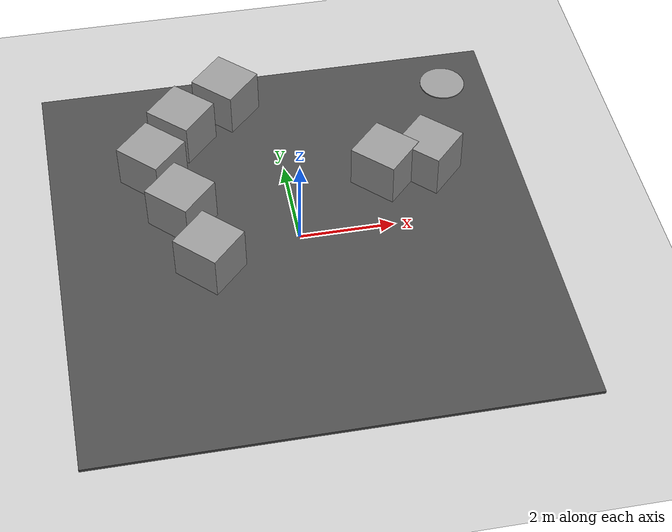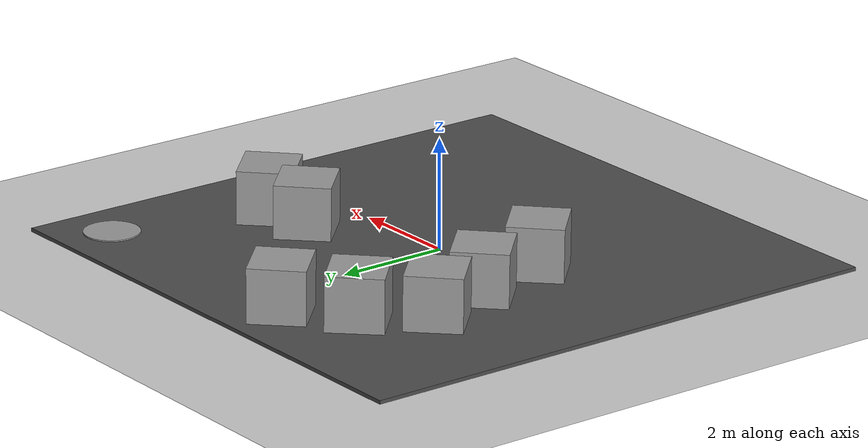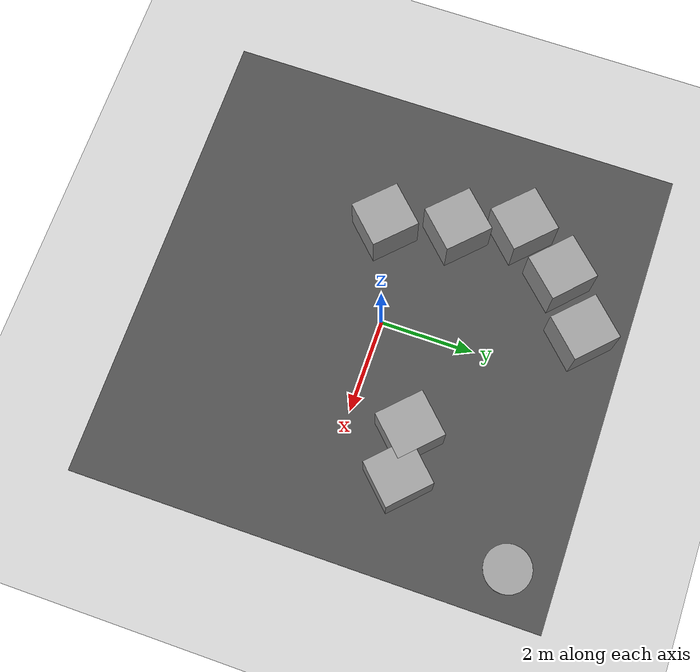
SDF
<sdf version="1.7">
 <world name="default">
  <model name="ground_plane">
   <static>1</static>
   <link name="link">
    <collision name="collision">
     <geometry><plane><normal>0 0 1</normal><size>100 100</size></plane></geometry>
     <surface><friction><ode><mu>100</mu><mu2>50</mu2></ode></friction></surface>
    </collision>
    <visual name="visual">
     <cast_shadows>0</cast_shadows>
     <geometry><plane><normal>0 0 1</normal><size>100 100</size></plane></geometry>
     <material>
      <script><uri>file://media/materials/scripts/gazebo.material</uri><name>Gazebo/Grey</name></script>
     </material>
    </visual>
    <velocity_decay><linear>0</linear><angular>0</angular></velocity_decay>
   </link>
  </model>
  <model name="asphalt_plane">
   <static>1</static>
   <link name="link">
    <collision name="collision"><geometry><box><size>10.0033 9.97431 0.1</size></box></geometry></collision>
    <visual name="visual">
     <cast_shadows>0</cast_shadows>
     <geometry><box><size>10.0033 9.97431 0.1</size></box></geometry>
     <material>
      <script>
       <uri>model://asphalt_plane/materials/scripts</uri>
       <uri>model://asphalt_plane/materials/textures</uri>
       <name>vrc/asphalt</name>
      </script>
     </material>
    </visual>
    <velocity_decay><linear>0</linear><angular>0</angular></velocity_decay>
   </link>
  </model>
  <model name="target">
   <link name="link">
    <inertial>
     <mass>1</mass>
     <inertia><ixx>0.145833</ixx><ixy>0</ixy><ixz>0</ixz><iyy>0.145833</iyy><iyz>0</iyz><izz>0.125</izz></inertia>
    </inertial>
    <visual name="visual">
     <geometry><cylinder><radius>0.5</radius><length>0.0238306</length></cylinder></geometry>
     <material>
      <script><name>Gazebo/Grey</name><uri>file://media/materials/scripts/gazebo.material</uri></script>
      <shader type="pixel"/>
     </material>
    </visual>
    <collision name="collision">
     <geometry><cylinder><radius>0.5</radius><length>0.023831</length></cylinder></geometry>
     <surface>
      <friction>
       <ode><mu>1</mu><mu2>1</mu2><fdir1>0 0 0</fdir1><slip1>0</slip1><slip2>0</slip2></ode>
       <torsional>
        <coefficient>1</coefficient>
        <patch_radius>0</patch_radius>
        <surface_radius>0</surface_radius>
        <use_patch_radius>1</use_patch_radius>
        <ode><slip>0</slip></ode>
       </torsional>
      </friction>
      <bounce><restitution_coefficient>0</restitution_coefficient><threshold>1e+06</threshold></bounce>
      <contact>
       <collide_without_contact>0</collide_without_contact>
       <collide_without_contact_bitmask>1</collide_without_contact_bitmask>
       <collide_bitmask>1</collide_bitmask>
       <ode>
        <soft_cfm>0</soft_cfm>
        <soft_erp>0.2</soft_erp>
        <kp>1e+13</kp>
        <kd>1</kd>
        <max_vel>0.01</max_vel>
        <min_depth>0</min_depth>
       </ode>
       <bullet>
        <split_impulse>1</split_impulse>
        <split_impulse_penetration_threshold>-0.01</split_impulse_penetration_threshold>
        <soft_cfm>0</soft_cfm>
        <soft_erp>0.2</soft_erp>
        <kp>1e+13</kp>
        <kd>1</kd>
       </bullet>
      </contact>
     </surface>
    </collision>
   </link>
   <static>1</static>
   <pose>4 4 0.061711 -0.000136 -0.000386 0.000976</pose>
  </model>
  <model name="obstacle5">
   <link name="link">
    <inertial>
     <mass>1</mass>
     <inertia>
      <ixx>0.166667</ixx>
      <ixy>0</ixy>
      <ixz>0</ixz>
      <iyy>0.166667</iyy>
      <iyz>0</iyz>
      <izz>0.166667</izz>
     </inertia>
    </inertial>
    <visual name="visual">
     <geometry><box><size>1.05016 1 1</size></box></geometry>
     <material>
      <script><name>Gazebo/Grey</name><uri>file://media/materials/scripts/gazebo.material</uri></script>
      <shader type="pixel"/>
     </material>
    </visual>
    <collision name="collision">
     <geometry><box><size>1.05016 1 1</size></box></geometry>
     <surface>
      <friction>
       <ode><mu>1</mu><mu2>1</mu2><fdir1>0 0 0</fdir1><slip1>0</slip1><slip2>0</slip2></ode>
       <torsional>
        <coefficient>1</coefficient>
        <patch_radius>0</patch_radius>
        <surface_radius>0</surface_radius>
        <use_patch_radius>1</use_patch_radius>
        <ode><slip>0</slip></ode>
       </torsional>
      </friction>
      <bounce><restitution_coefficient>0</restitution_coefficient><threshold>1e+06</threshold></bounce>
      <contact>
       <collide_without_contact>0</collide_without_contact>
       <collide_without_contact_bitmask>1</collide_without_contact_bitmask>
       <collide_bitmask>1</collide_bitmask>
       <ode>
        <soft_cfm>0</soft_cfm>
        <soft_erp>0.2</soft_erp>
        <kp>1e+13</kp>
        <kd>1</kd>
        <max_vel>0.01</max_vel>
        <min_depth>0</min_depth>
       </ode>
       <bullet>
        <split_impulse>1</split_impulse>
        <split_impulse_penetration_threshold>-0.01</split_impulse_penetration_threshold>
        <soft_cfm>0</soft_cfm>
        <soft_erp>0.2</soft_erp>
        <kp>1e+13</kp>
        <kd>1</kd>
       </bullet>
      </contact>
     </surface>
    </collision>
   </link>
   <static>1</static>
   <pose>-1.94704 -0.590376 0.521268 0.012546 -0.012751 -0.777295</pose>
  </model>
  <model name="obstacle6">
   <link name="link">
    <inertial>
     <mass>1</mass>
     <inertia>
      <ixx>0.166667</ixx>
      <ixy>0</ixy>
      <ixz>0</ixz>
      <iyy>0.166667</iyy>
      <iyz>0</iyz>
      <izz>0.166667</izz>
     </inertia>
    </inertial>
    <visual name="visual">
     <geometry><box><size>1.05016 1 1</size></box></geometry>
     <material>
      <script><name>Gazebo/Grey</name><uri>file://media/materials/scripts/gazebo.material</uri></script>
      <shader type="pixel"/>
     </material>
    </visual>
    <collision name="collision">
     <geometry><box><size>1.05016 1 1</size></box></geometry>
     <surface>
      <friction>
       <ode><mu>1</mu><mu2>1</mu2><fdir1>0 0 0</fdir1><slip1>0</slip1><slip2>0</slip2></ode>
       <torsional>
        <coefficient>1</coefficient>
        <patch_radius>0</patch_radius>
        <surface_radius>0</surface_radius>
        <use_patch_radius>1</use_patch_radius>
        <ode><slip>0</slip></ode>
       </torsional>
      </friction>
      <bounce><restitution_coefficient>0</restitution_coefficient><threshold>1e+06</threshold></bounce>
      <contact>
       <collide_without_contact>0</collide_without_contact>
       <collide_without_contact_bitmask>1</collide_without_contact_bitmask>
       <collide_bitmask>1</collide_bitmask>
       <ode>
        <soft_cfm>0</soft_cfm>
        <soft_erp>0.2</soft_erp>
        <kp>1e+13</kp>
        <kd>1</kd>
        <max_vel>0.01</max_vel>
        <min_depth>0</min_depth>
       </ode>
       <bullet>
        <split_impulse>1</split_impulse>
        <split_impulse_penetration_threshold>-0.01</split_impulse_penetration_threshold>
        <soft_cfm>0</soft_cfm>
        <soft_erp>0.2</soft_erp>
        <kp>1e+13</kp>
        <kd>1</kd>
       </bullet>
      </contact>
     </surface>
    </collision>
   </link>
   <static>1</static>
   <pose>2.05527 1.29439 0.521268 0.012546 -0.012751 -0.777295</pose>
  </model>
  <model name="obstacle7">
   <link name="link">
    <inertial>
     <mass>1</mass>
     <inertia>
      <ixx>0.166667</ixx>
      <ixy>0</ixy>
      <ixz>0</ixz>
      <iyy>0.166667</iyy>
      <iyz>0</iyz>
      <izz>0.166667</izz>
     </inertia>
    </inertial>
    <visual name="visual">
     <geometry><box><size>1.05016 1 1</size></box></geometry>
     <material>
      <script><name>Gazebo/Grey</name><uri>file://media/materials/scripts/gazebo.material</uri></script>
      <shader type="pixel"/>
     </material>
    </visual>
    <collision name="collision">
     <geometry><box><size>1.05016 1 1</size></box></geometry>
     <surface>
      <friction>
       <ode><mu>1</mu><mu2>1</mu2><fdir1>0 0 0</fdir1><slip1>0</slip1><slip2>0</slip2></ode>
       <torsional>
        <coefficient>1</coefficient>
        <patch_radius>0</patch_radius>
        <surface_radius>0</surface_radius>
        <use_patch_radius>1</use_patch_radius>
        <ode><slip>0</slip></ode>
       </torsional>
      </friction>
      <bounce><restitution_coefficient>0</restitution_coefficient><threshold>1e+06</threshold></bounce>
      <contact>
       <collide_without_contact>0</collide_without_contact>
       <collide_without_contact_bitmask>1</collide_without_contact_bitmask>
       <collide_bitmask>1</collide_bitmask>
       <ode>
        <soft_cfm>0</soft_cfm>
        <soft_erp>0.2</soft_erp>
        <kp>1e+13</kp>
        <kd>1</kd>
        <max_vel>0.01</max_vel>
        <min_depth>0</min_depth>
       </ode>
       <bullet>
        <split_impulse>1</split_impulse>
        <split_impulse_penetration_threshold>-0.01</split_impulse_penetration_threshold>
        <soft_cfm>0</soft_cfm>
        <soft_erp>0.2</soft_erp>
        <kp>1e+13</kp>
        <kd>1</kd>
       </bullet>
      </contact>
     </surface>
    </collision>
   </link>
   <static>1</static>
   <pose>-2.78674 2.16761 0.524195 0.012546 -0.012751 -0.777295</pose>
  </model>
  <model name="obstacle8">
   <link name="link">
    <inertial>
     <mass>1</mass>
     <inertia>
      <ixx>0.166667</ixx>
      <ixy>0</ixy>
      <ixz>0</ixz>
      <iyy>0.166667</iyy>
      <iyz>0</iyz>
      <izz>0.166667</izz>
     </inertia>
    </inertial>
    <visual name="visual">
     <geometry><box><size>1.05016 1 1</size></box></geometry>
     <material>
      <script><name>Gazebo/Grey</name><uri>file://media/materials/scripts/gazebo.material</uri></script>
      <shader type="pixel"/>
     </material>
    </visual>
    <collision name="collision">
     <geometry><box><size>1.05016 1 1</size></box></geometry>
     <surface>
      <friction>
       <ode><mu>1</mu><mu2>1</mu2><fdir1>0 0 0</fdir1><slip1>0</slip1><slip2>0</slip2></ode>
       <torsional>
        <coefficient>1</coefficient>
        <patch_radius>0</patch_radius>
        <surface_radius>0</surface_radius>
        <use_patch_radius>1</use_patch_radius>
        <ode><slip>0</slip></ode>
       </torsional>
      </friction>
      <bounce><restitution_coefficient>0</restitution_coefficient><threshold>1e+06</threshold></bounce>
      <contact>
       <collide_without_contact>0</collide_without_contact>
       <collide_without_contact_bitmask>1</collide_without_contact_bitmask>
       <collide_bitmask>1</collide_bitmask>
       <ode>
        <soft_cfm>0</soft_cfm>
        <soft_erp>0.2</soft_erp>
        <kp>1e+13</kp>
        <kd>1</kd>
        <max_vel>0.01</max_vel>
        <min_depth>0</min_depth>
       </ode>
       <bullet>
        <split_impulse>1</split_impulse>
        <split_impulse_penetration_threshold>-0.01</split_impulse_penetration_threshold>
        <soft_cfm>0</soft_cfm>
        <soft_erp>0.2</soft_erp>
        <kp>1e+13</kp>
        <kd>1</kd>
       </bullet>
      </contact>
     </surface>
    </collision>
   </link>
   <static>1</static>
   <pose>-2.33765 0.873383 0.521268 0.012546 -0.012751 -0.777295</pose>
  </model>
  <model name="obstacle11">
   <link name="link">
    <inertial>
     <mass>1</mass>
     <inertia>
      <ixx>0.166667</ixx>
      <ixy>0</ixy>
      <ixz>0</ixz>
      <iyy>0.166667</iyy>
      <iyz>0</iyz>
      <izz>0.166667</izz>
     </inertia>
    </inertial>
    <visual name="visual">
     <geometry><box><size>1.05659 1 1</size></box></geometry>
     <material>
      <script><name>Gazebo/Grey</name><uri>file://media/materials/scripts/gazebo.material</uri></script>
      <shader type="pixel"/>
     </material>
    </visual>
    <collision name="collision">
     <geometry><box><size>1.05659 1 1</size></box></geometry>
     <surface>
      <friction>
       <ode><mu>1</mu><mu2>1</mu2><fdir1>0 0 0</fdir1><slip1>0</slip1><slip2>0</slip2></ode>
       <torsional>
        <coefficient>1</coefficient>
        <patch_radius>0</patch_radius>
        <surface_radius>0</surface_radius>
        <use_patch_radius>1</use_patch_radius>
        <ode><slip>0</slip></ode>
       </torsional>
      </friction>
      <bounce><restitution_coefficient>0</restitution_coefficient><threshold>1e+06</threshold></bounce>
      <contact>
       <collide_without_contact>0</collide_without_contact>
       <collide_without_contact_bitmask>1</collide_without_contact_bitmask>
       <collide_bitmask>1</collide_bitmask>
       <ode>
        <soft_cfm>0</soft_cfm>
        <soft_erp>0.2</soft_erp>
        <kp>1e+13</kp>
        <kd>1</kd>
        <max_vel>0.01</max_vel>
        <min_depth>0</min_depth>
       </ode>
       <bullet>
        <split_impulse>1</split_impulse>
        <split_impulse_penetration_threshold>-0.01</split_impulse_penetration_threshold>
        <soft_cfm>0</soft_cfm>
        <soft_erp>0.2</soft_erp>
        <kp>1e+13</kp>
        <kd>1</kd>
       </bullet>
      </contact>
     </surface>
    </collision>
   </link>
   <static>1</static>
   <pose>-2.03084 3.21048 0.52634 0.012367 -0.012924 -0.76345</pose>
  </model>
  <model name="obstacle12">
   <link name="link">
    <inertial>
     <mass>1</mass>
     <inertia>
      <ixx>0.166667</ixx>
      <ixy>0</ixy>
      <ixz>0</ixz>
      <iyy>0.166667</iyy>
      <iyz>0</iyz>
      <izz>0.166667</izz>
     </inertia>
    </inertial>
    <visual name="visual">
     <geometry><box><size>1.05016 1 1</size></box></geometry>
     <material>
      <script><name>Gazebo/Grey</name><uri>file://media/materials/scripts/gazebo.material</uri></script>
      <shader type="pixel"/>
     </material>
    </visual>
    <collision name="collision">
     <geometry><box><size>1.05016 1 1</size></box></geometry>
     <surface>
      <friction>
       <ode><mu>1</mu><mu2>1</mu2><fdir1>0 0 0</fdir1><slip1>0</slip1><slip2>0</slip2></ode>
       <torsional>
        <coefficient>1</coefficient>
        <patch_radius>0</patch_radius>
        <surface_radius>0</surface_radius>
        <use_patch_radius>1</use_patch_radius>
        <ode><slip>0</slip></ode>
       </torsional>
      </friction>
      <bounce><restitution_coefficient>0</restitution_coefficient><threshold>1e+06</threshold></bounce>
      <contact>
       <collide_without_contact>0</collide_without_contact>
       <collide_without_contact_bitmask>1</collide_without_contact_bitmask>
       <collide_bitmask>1</collide_bitmask>
       <ode>
        <soft_cfm>0</soft_cfm>
        <soft_erp>0.2</soft_erp>
        <kp>1e+13</kp>
        <kd>1</kd>
        <max_vel>0.01</max_vel>
        <min_depth>0</min_depth>
       </ode>
       <bullet>
        <split_impulse>1</split_impulse>
        <split_impulse_penetration_threshold>-0.01</split_impulse_penetration_threshold>
        <soft_cfm>0</soft_cfm>
        <soft_erp>0.2</soft_erp>
        <kp>1e+13</kp>
        <kd>1</kd>
       </bullet>
      </contact>
     </surface>
    </collision>
   </link>
   <static>1</static>
   <pose>-0.955577 3.99472 0.521268 0.012546 -0.012751 -0.777295</pose>
  </model>
  <model name="obstacle13">
   <link name="link">
    <inertial>
     <mass>1</mass>
     <inertia>
      <ixx>0.166667</ixx>
      <ixy>0</ixy>
      <ixz>0</ixz>
      <iyy>0.166667</iyy>
      <iyz>0</iyz>
      <izz>0.166667</izz>
     </inertia>
    </inertial>
    <visual name="visual">
     <geometry><box><size>1.05016 1 1</size></box></geometry>
     <material>
      <script><name>Gazebo/Grey</name><uri>file://media/materials/scripts/gazebo.material</uri></script>
      <shader type="pixel"/>
     </material>
    </visual>
    <collision name="collision">
     <geometry><box><size>1.05016 1 1</size></box></geometry>
     <surface>
      <friction>
       <ode><mu>1</mu><mu2>1</mu2><fdir1>0 0 0</fdir1><slip1>0</slip1><slip2>0</slip2></ode>
       <torsional>
        <coefficient>1</coefficient>
        <patch_radius>0</patch_radius>
        <surface_radius>0</surface_radius>
        <use_patch_radius>1</use_patch_radius>
        <ode><slip>0</slip></ode>
       </torsional>
      </friction>
      <bounce><restitution_coefficient>0</restitution_coefficient><threshold>1e+06</threshold></bounce>
      <contact>
       <collide_without_contact>0</collide_without_contact>
       <collide_without_contact_bitmask>1</collide_without_contact_bitmask>
       <collide_bitmask>1</collide_bitmask>
       <ode>
        <soft_cfm>0</soft_cfm>
        <soft_erp>0.2</soft_erp>
        <kp>1e+13</kp>
        <kd>1</kd>
        <max_vel>0.01</max_vel>
        <min_depth>0</min_depth>
       </ode>
       <bullet>
        <split_impulse>1</split_impulse>
        <split_impulse_penetration_threshold>-0.01</split_impulse_penetration_threshold>
        <soft_cfm>0</soft_cfm>
        <soft_erp>0.2</soft_erp>
        <kp>1e+13</kp>
        <kd>1</kd>
       </bullet>
      </contact>
     </surface>
    </collision>
   </link>
   <static>1</static>
   <pose>3.02951 1.37546 0.521268 0.012546 -0.012751 -0.777295</pose>
  </model>
 </world>
</sdf>
